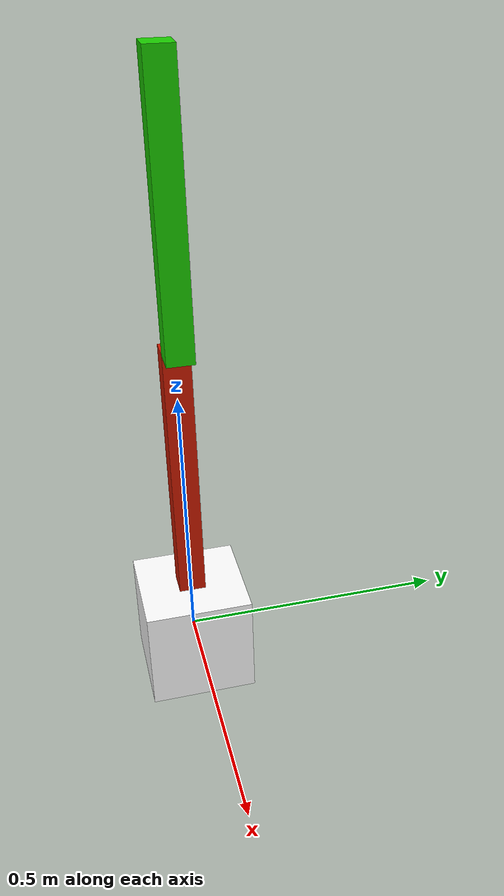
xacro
<?xml version="1.0"?>
<robot name="two_link_geometry" xmlns:xacro="http://ros.org/wiki/xacro">

	<!-- Robot Constant Parameters defined as xarco -->
	<xacro:property name="PI" value="3.1415926535897931"/>
	<xacro:property name="mass" value="0.2"/>         <!-- unit it is in kg -->
	<xacro:property name="width" value="0.05"/> 	<!-- unit it is in meter -->
	<xacro:property name="height" value="0.5"/>  <!-- unit it is in meter -->
  <xacro:property name="base" value="0.2"/>    <!-- This this the base box side -->

  <!-- Import all Gazebo-customization elements, including Gazebo colors -->
  <xacro:include filename="$(find link_test)/urdf/two_link_geometry.gazebo" />

	<!-- This material is for RViZ not in Gazebo -->
	<material name="red">
    <color rgba="0.8 0.1 0 1"/>
  </material>

  <material name="green">
    <color rgba="0.1 0.8 0 1"/>
  </material>

  <material name="blue">
    <color rgba="0 0 0.8 1"/>
  </material>

  <material name="black">
    <color rgba="0 0 0 1"/>
  </material>

  <material name="white">
    <color rgba="1 1 1 1"/>
  </material>

  <!-- This is the wolrd / ground link to fix the robot to the ground -->
  <link name="base_link">
        <!-- The value in collision and visual are same-->
    <collision>
      <origin xyz="0 0 0" rpy="0 0 0"/>
      <geometry>
        <box size="${base} ${base} ${base}"/>
      </geometry>
      <material name="white"/>
    </collision>

    <visual>
      <origin xyz="0 0 0" rpy="0 0 0"/>
      <geometry>
        <box size="${base} ${base} ${base}"/>
      </geometry>
      <material name="white"/>
    </visual>

    <inertial>
      <origin xyz="0 0 0" rpy="0 0 0"/>
      <mass value="1000"/>
      <inertia
        ixx="${1000 / 12.0 * (base*base + base*base)}" ixy="0.0" ixz="0.0"
        iyy="${1000 / 12.0 * (base*base + base*base)}" iyz="0.0"
        izz="${1000 / 12.0 * (base*base + base*base)}"/>
    </inertial>
  </link>

  <!-- This is the joint that connect the link1 with ground-->
  <!-- when using type="revolute" rostopic pub cannot send command to Gazebo -->
  <!-- Working fine with continuous type-->
  <joint name="joint1" type="continuous">
    <axis xyz="1 0 0"/>
    <!--limit effort="0" lower="${-PI/2}" upper="${PI/2}" velocity="0.0"/-->
    <origin xyz="0 0 ${base/2}"/>
  	<parent link="base_link"/>
  	<child link="link1"/>
    <friction value="1"/>
  </joint>

  <!-- First Link -->
  <link name="link1">
    <!-- The value in collision and visual are same-->
  	<collision>
  		<origin xyz="0 0 ${(height/2.0)}" rpy="0 0 0"/>
  		<geometry>
  			<box size="${width} ${width} ${height}"/>
  		</geometry>
      <material name="red"/>
  	</collision>

  	<visual>
  		<origin xyz="0 0 ${(height/2.0)}" rpy="0 0 0"/>
  		<geometry>
  			<box size="${width} ${width} ${height}"/>
  		</geometry>
      <material name="red"/>
  	</visual>

  	<inertial>
  		<origin xyz="0 0 0" rpy="0 0 0"/>
  		<mass value="${mass}"/>
  		<inertia
  			ixx="${mass / 12.0 * (width*width + height*height)}" ixy="0.0" ixz="0.0"
  			iyy="${mass / 12.0 * (height*height + width*width)}" iyz="0.0"
  			izz="${mass / 12.0 * (width*width + width*width)}"/>
  	</inertial>

  </link>

  <joint name="joint2" type="continuous">
    <axis xyz="1 0 0"/>
    <!--limit effort="0" lower="${-PI/2}" upper="${PI/2}" velocity="0"/-->
    <origin xyz="${width} 0 ${height}"/>
    <parent link="link1"/>
    <child link="link2"/>
    <friction value="1"/>
  </joint>

    <!-- Second Link -->
  <link name="link2">
    <!-- The value in collision and visual are same-->
    <collision>
      <origin xyz="0 0 ${height/2.0}" rpy="0 0 0"/>
      <geometry>
        <box size="${width} ${width} ${height}"/>
      </geometry>
      <material name="green"/>
    </collision>

    <visual>
      <origin xyz="0 0 ${height/2.0}" rpy="0 0 0"/>
      <geometry>
        <box size="${width} ${width} ${height}"/>
      </geometry>
      <material name="green"/>
    </visual>

    <inertial>
      <origin xyz="0 0 0" rpy="0 0 0"/>
      <mass value="${mass}"/>
      <inertia
        ixx="${mass / 12.0 * (width*width + height*height)}" ixy="0.0" ixz="0.0"
        iyy="${mass / 12.0 * (height*height + width*width)}" iyz="0.0"
        izz="${mass / 12.0 * (width*width + width*width)}"/>
    </inertial>

  </link>

  <transmission name="tran1">
    <type>transmission_interface/SimpleTransmission</type>
    <joint name="joint1">
      <hardwareInterface>hardware_interface/EffortJointInterface</hardwareInterface>
    </joint>
    <actuator name="motor1">
      <hardwareInterface>hardware_interface/EffortJointInterface</hardwareInterface>
      <mechanicalReduction>1</mechanicalReduction>
    </actuator>
  </transmission>

  <transmission name="tran2">
    <type>transmission_interface/SimpleTransmission</type>
    <joint name="joint2">
      <hardwareInterface>hardware_interface/EffortJointInterface</hardwareInterface>
    </joint>
    <actuator name="motor2">
      <hardwareInterface>hardware_interface/EffortJointInterface</hardwareInterface>
      <mechanicalReduction>1</mechanicalReduction>
    </actuator>
  </transmission>

</robot>
